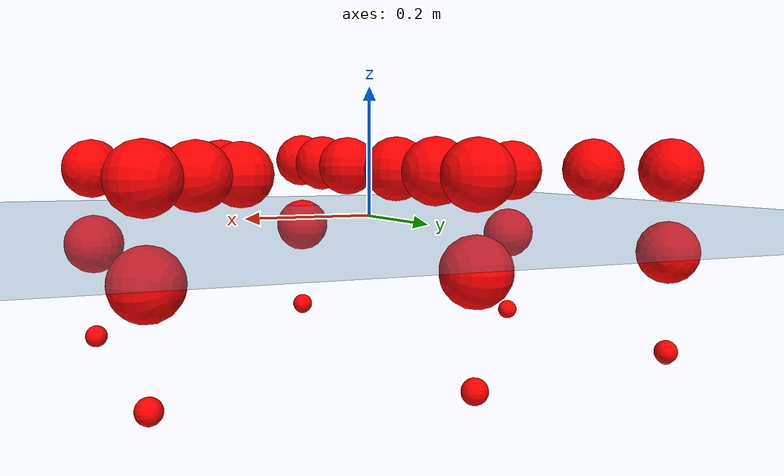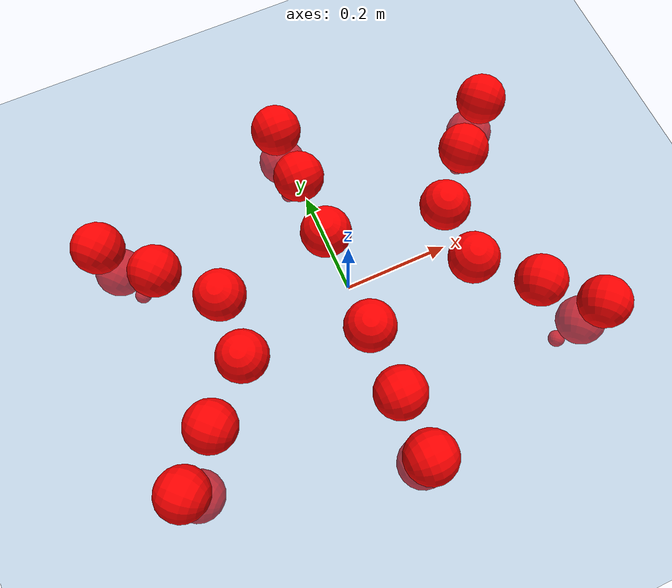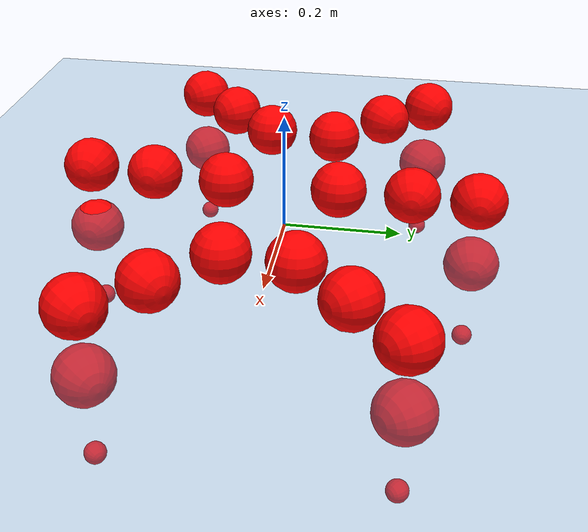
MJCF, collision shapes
<mujoco model="Golem">
  <compiler angle="radian" assetdir="assets" balanceinertia="true" inertiafromgeom="false"/>

  <option timestep="0.005" density="1.2" viscosity="2e-05"/>

  <size nkey="1"/>

  <visual>
    <quality shadowsize="8192"/>
    <map shadowclip="0.5"/>
  </visual>

  <default>
    <default class="/">
      <joint armature="0.01" damping="0.01" frictionloss="0.01"/>
      <geom contype="0" conaffinity="0" group="1" solref="-1000 -80"/>
      <site size="0.01 0.005 0.005" group="5"/>
      <general forcelimited="true" biastype="affine" gainprm="25" biasprm="0 -25 -0.5"/>
      <default class="visual">
        <geom type="mesh" group="2"/>
      </default>
      <default class="collision">
        <geom group="3"/>
      </default>
      <default class="foot">
        <geom size="0.01 0 0" condim="6" group="4" priority="1" solimp="0.015 1 0.01"/>
      </default>
      <default class="reward_collision_sphere">
        <geom group="5" rgba="1 0 0 1"/>
      </default>
    </default>
  </default>

  <asset>
    <texture type="skybox" colorspace="auto" name="//unnamed_texture_0" builtin="gradient" rgb1="0.95 0.95 0.95" rgb2="0.95 0.95 0.95" width="100" height="600"/>
    <texture type="2d" colorspace="auto" name="texplane" builtin="checker" rgb1="0.345 0.575 0.748" rgb2="0.345 0.575 0.748" markrgb="1 1 1" width="512" height="512"/>
    <material name="MatPlane" class="/" texture="texplane" texuniform="true" texrepeat="2 2" specular="0.9"/>
    <mesh name="body" class="/" file="body.stl" scale="0.001 0.001 0.001"/>
    <mesh name="coxa" class="/" file="coxa.stl" scale="0.001 0.001 0.001"/>
    <mesh name="femur" class="/" file="femur.stl" scale="0.001 0.001 0.001"/>
    <mesh name="tibia" class="/" file="tibia.stl" scale="0.001 0.001 0.001"/>
    <mesh name="tarsus" class="/" file="tarsus.stl" scale="0.001 0.001 0.001"/>
  </asset>

  <worldbody>
    <geom name="floor" class="/" size="100 100 0.125" type="plane" group="0" material="MatPlane"/>
    <light name="toplight_shadow" class="/" pos="0 0 5" dir="0.0990148 0.0990148 -0.990148" type="directional" ambient="0.04 0.04 0.04" diffuse="0.55 0.55 0.55" specular="0.12 0.12 0.12"/>
    <light name="toplight_fill" class="/" pos="0 0 5" dir="0.0990148 0.0990148 -0.990148" type="directional" castshadow="false" ambient="0.04 0.04 0.04" diffuse="0.3 0.3 0.3" specular="0.08 0.08 0.08"/>
    <body name="trunk" pos="-0.0016909 -0.00208828 0.00176725" quat="0.999999 -0.000651049 0.000262726 -0.00111931">
      <inertial pos="0.00201428 0.000992339 0.00151971" quat="0.99995 0.00328002 0.00448639 -0.00827138" mass="6.30627" diaginertia="0.057907 0.0140528 0.015393"/>
      <joint name="//unnamed_joint_0" type="free"/>
      <geom name="//unnamed_geom_1" class="/" pos="0 0 0.0691556" quat="1 0 0 0" type="mesh" rgba="0.9 0.9 0.9 1" mesh="body"/>
      <site name="imu" class="/" pos="0.184703 0.00852817 0.112102" size="0.011844"/>
      <camera name="track" class="/" pos="0 -2.11805 0" quat="0.707107 0.707107 0 0" mode="trackcom"/>
      <camera name="ego_camera" class="/" pos="0.183769 0 0.108056" quat="-0.5 -0.5 0.5 0.5"/>
      <body name="coxa_RR" pos="-0.253438 -0.0879953 0.0713457" quat="0.382509 0.00114095 0.000312758 -0.923951">
        <inertial pos="4.1579e-05 0.00123347 0.00268936" quat="0.999992 0.000338652 0.00345837 -0.00194878" mass="0.341538" diaginertia="0.0567782 0.0136999 0.0157081"/>
        <joint name="coxa_joint_RR" class="/" pos="0 0 0" axis="-0.00714695 -0.000847457 -0.999974" range="-3.13273 3.08599" armature="0.0109883" damping="0.00792265" frictionloss="0.0117129"/>
        <geom name="//unnamed_geom_2" class="/" type="mesh" rgba="0.2 0.2 0.2 1" mesh="coxa"/>
        <geom name="//unnamed_geom_3" class="reward_collision_sphere" size="0.0473759" pos="-0.0424083 0 0"/>
        <body name="femur_RR" pos="0.0843171 -0.00246419 -0.00443237" quat="0.500401 -0.499568 0.500349 0.499681">
          <inertial pos="0.00186866 0.000333024 0.0029147" quat="0.999938 0.00794949 -0.00745655 0.00230194" mass="0.330907" diaginertia="0.0567616 0.013347 0.0145407"/>
          <joint name="femur_joint_RR" class="/" pos="0 0 0" axis="0.0105682 -0.00623427 -0.999925" range="-3.18907 3.13981" armature="0.0119837" damping="0.0230383" frictionloss="0.0120809"/>
          <geom name="//unnamed_geom_4" class="/" type="mesh" rgba="0.9 0.9 0.9 1" mesh="femur"/>
          <geom name="//unnamed_geom_5" class="reward_collision_sphere" size="0.0473759"/>
          <body name="tibia_RR" pos="0.00109683 -0.114149 0.00221406" quat="-3.187e-05 1 -5.3665e-05 -0.000143102">
            <inertial pos="-0.000960274 0.000568986 0.00018334" quat="0.999944 -0.00571337 -0.00808589 0.00379161" mass="0.32878" diaginertia="0.0527873 0.0129305 0.0140632"/>
            <joint name="tibia_joint_RR" class="/" pos="0 0 0" axis="0.00250735 -0.00119552 0.999996" range="-3.18033 3.13496" armature="0.0103317" damping="0" frictionloss="0.0113909"/>
            <geom name="//unnamed_geom_6" class="/" type="mesh" rgba="0.2 0.2 0.2 1" mesh="tibia"/>
            <geom name="//unnamed_geom_7" class="reward_collision_sphere" size="0.0473759"/>
            <body name="tarsus_RR" pos="0.126191 0.00221641 -0.00165055" quat="1 -0.000163742 -0.000280628 -0.000237363">
              <inertial pos="0.0833136 0.000353756 -0.00119999" quat="0.499461 0.49222 0.507889 0.500306" mass="0.312126" diaginertia="0.0570243 0.0128989 0.0143364"/>
              <joint name="tarsus_joint_RR" class="/" pos="0 0 0" axis="0.00990408 0.00800963 0.999919" stiffness="0.00640417" range="-3.13513 3.10357" armature="0.0102172" damping="0.0387763" frictionloss="0.0133107"/>
              <geom name="//unnamed_geom_8" class="/" type="mesh" rgba="0.9 0.9 0.9 1" mesh="tarsus"/>
              <geom name="foot_1" class="foot" size="0.0112932" pos="0.158324 0 0" quat="0 -0.707107 0 0.707107"/>
              <geom name="//unnamed_geom_10" class="reward_collision_sphere" size="0.0473759"/>
              <geom name="//unnamed_geom_11" class="reward_collision_sphere" size="0.017766" pos="0.151963 0 0"/>
              <site name="foot_1" class="foot" pos="0.158324 0 0" quat="0 -0.707107 0 0.707107" size="0.011844"/>
            </body>
          </body>
        </body>
      </body>
      <body name="coxa_RM" pos="-0.00185795 -0.141521 0.0743634" quat="0.706475 0.000687829 -0.000225679 -0.707738">
        <inertial pos="-0.000333407 -0.000876863 0.00100135" quat="0.999988 -0.00124953 0.00459459 -0.00117976" mass="0.331304" diaginertia="0.0565998 0.0133398 0.0140154"/>
        <joint name="coxa_joint_RM" class="/" pos="0 0 0" axis="-0.00519195 -0.00466132 -0.999976" stiffness="0.00407159" range="-3.1768 3.12409" armature="0.0125295" damping="0.0126837" frictionloss="0.0102798"/>
        <geom name="//unnamed_geom_12" class="/" type="mesh" rgba="0.2 0.2 0.2 1" mesh="coxa"/>
        <geom name="//unnamed_geom_13" class="reward_collision_sphere" size="0.0473759" pos="-0.0424083 0 0"/>
        <body name="femur_RM" pos="0.0838653 -0.00191347 0.00352483" quat="0.500492 -0.500075 0.499546 0.499886">
          <inertial pos="-0.00126116 -0.000450511 -3.45076e-05" quat="0.999957 -0.0032381 0.0036113 -0.00794624" mass="0.323844" diaginertia="0.0582619 0.0132798 0.0145008"/>
          <joint name="femur_joint_RM" class="/" pos="0 0 0" axis="0.000528643 0.00138374 -0.999999" range="-3.15744 3.1462" armature="0.0133472" damping="0.0286762" frictionloss="0.0115526"/>
          <geom name="//unnamed_geom_14" class="/" type="mesh" rgba="0.9 0.9 0.9 1" mesh="femur"/>
          <geom name="//unnamed_geom_15" class="reward_collision_sphere" size="0.0473759"/>
          <body name="tibia_RM" pos="-0.00363336 -0.11422 -0.000183607" quat="0.000146281 1 -0.000142939 -1.61891e-05">
            <inertial pos="0.00200717 0.00281061 -0.00202049" quat="0.999975 0.00215564 -0.00650484 -0.00184489" mass="0.351153" diaginertia="0.0585215 0.0135006 0.015484"/>
            <joint name="tibia_joint_RM" class="/" pos="0 0 0" axis="-0.00730125 0.00156647 0.999972" range="-3.15297 3.08504" armature="0.0116842" damping="0.0136171" frictionloss="0.0102492"/>
            <geom name="//unnamed_geom_16" class="/" type="mesh" rgba="0.2 0.2 0.2 1" mesh="tibia"/>
            <geom name="//unnamed_geom_17" class="reward_collision_sphere" size="0.0473759"/>
            <body name="tarsus_RM" pos="0.12272 0.00248144 0.00197976" quat="1 -9.7154e-05 -0.000128595 6.99998e-05">
              <inertial pos="0.0834879 -0.00219258 7.68297e-05" quat="0.506065 0.495645 0.503743 0.494447" mass="0.344404" diaginertia="0.0586044 0.0138714 0.0153976"/>
              <joint name="tarsus_joint_RM" class="/" pos="0 0 0" axis="-0.00417042 0.00120042 0.999991" stiffness="0.00651129" range="-3.14126 3.14231" armature="0.0120066" damping="0.0119394" frictionloss="0.0118144"/>
              <geom name="//unnamed_geom_18" class="/" type="mesh" rgba="0.9 0.9 0.9 1" mesh="tarsus"/>
              <geom name="foot_2" class="foot" size="0.0122689" pos="0.158324 0 0" quat="0 -0.707107 0 0.707107"/>
              <geom name="//unnamed_geom_20" class="reward_collision_sphere" size="0.0473759"/>
              <geom name="//unnamed_geom_21" class="reward_collision_sphere" size="0.017766" pos="0.151963 0 0"/>
              <site name="foot_2" class="foot" pos="0.158324 0 0" quat="0 -0.707107 0 0.707107" size="0.011844"/>
            </body>
          </body>
        </body>
      </body>
      <body name="coxa_RF" pos="0.252156 -0.0884757 0.0689204" quat="0.923904 -0.00016688 -5.0979e-05 -0.382624">
        <inertial pos="0.00259674 0.00198082 -0.00010808" quat="1 0.000267704 -0.000154015 -0.000170306" mass="0.328629" diaginertia="0.0598157 0.0139698 0.0152019"/>
        <joint name="coxa_joint_RF" class="/" pos="0 0 0" axis="0.000108687 0.00136066 -0.999999" range="-3.19224 3.13827" armature="0.0123652" damping="0.0106303" frictionloss="0.0102762"/>
        <geom name="//unnamed_geom_22" class="/" type="mesh" rgba="0.2 0.2 0.2 1" mesh="coxa"/>
        <geom name="//unnamed_geom_23" class="reward_collision_sphere" size="0.0473759" pos="-0.0424083 0 0"/>
        <body name="femur_RF" pos="0.0826619 0.00195316 -0.000864651" quat="0.499093 -0.499867 0.500142 0.500897">
          <inertial pos="0.00218544 -0.00185132 0.00235191" quat="1 -0.00038106 -0.000194692 0.000536182" mass="0.325815" diaginertia="0.0577043 0.0132931 0.0145989"/>
          <joint name="femur_joint_RF" class="/" pos="0 0 0" axis="0.00949537 -0.00277729 -0.999951" stiffness="0.0109445" range="-3.10794 3.10602" armature="0.0116656" damping="0.0178153" frictionloss="0.0104545"/>
          <geom name="//unnamed_geom_24" class="/" type="mesh" rgba="0.9 0.9 0.9 1" mesh="femur"/>
          <geom name="//unnamed_geom_25" class="reward_collision_sphere" size="0.0473759"/>
          <body name="tibia_RF" pos="-0.0028687 -0.11444 0.000122417" quat="6.09408e-05 1 -2.93682e-05 1.86233e-05">
            <inertial pos="0.00118536 -0.000762648 -0.000565384" quat="0.99994 0.00506286 0.00908031 0.00346052" mass="0.336438" diaginertia="0.0567758 0.0132924 0.0145273"/>
            <joint name="tibia_joint_RF" class="/" pos="0 0 0" axis="0.00934181 -0.00518141 0.999943" stiffness="0.00579946" range="-3.14706 3.11458" armature="0.0113769" damping="0.0338288" frictionloss="0.0116159"/>
            <geom name="//unnamed_geom_26" class="/" type="mesh" rgba="0.2 0.2 0.2 1" mesh="tibia"/>
            <geom name="//unnamed_geom_27" class="reward_collision_sphere" size="0.0473759"/>
            <body name="tarsus_RF" pos="0.122781 -0.000811038 0.000509785" quat="1 0.000625269 -0.000342562 -0.000419131">
              <inertial pos="0.0837819 -9.26069e-05 0.00085888" quat="0.504042 0.491944 0.49861 0.505293" mass="0.343153" diaginertia="0.0582533 0.0129307 0.0146488"/>
              <joint name="tarsus_joint_RF" class="/" pos="0 0 0" axis="0.00638265 0.00361135 0.999973" range="-3.18859 3.14041" armature="0.0121904" damping="0.0012601" frictionloss="0.0102604"/>
              <geom name="//unnamed_geom_28" class="/" type="mesh" rgba="0.9 0.9 0.9 1" mesh="tarsus"/>
              <geom name="foot_3" class="foot" size="0.0112983" pos="0.158324 0 0" quat="0 -0.707107 0 0.707107"/>
              <geom name="//unnamed_geom_30" class="reward_collision_sphere" size="0.0473759"/>
              <geom name="//unnamed_geom_31" class="reward_collision_sphere" size="0.017766" pos="0.151963 0 0"/>
              <site name="foot_3" class="foot" pos="0.158324 0 0" quat="0 -0.707107 0 0.707107" size="0.011844"/>
            </body>
          </body>
        </body>
      </body>
      <body name="coxa_LR" pos="-0.250013 0.0916682 0.068337" quat="0.383037 -4.65329e-05 -6.45034e-05 0.923733">
        <inertial pos="-0.00106747 0.00208582 0.00231048" quat="0.999993 -0.00123158 -0.00320386 -0.00152738" mass="0.345366" diaginertia="0.0590225 0.0138355 0.0157281"/>
        <joint name="coxa_joint_LR" class="/" pos="0 0 0" axis="-0.0037144 0.00142798 -0.999992" stiffness="0.00272635" range="-3.18965 3.09173" armature="0.0123399" damping="0.0104248" frictionloss="0.0132148"/>
        <geom name="//unnamed_geom_32" class="/" type="mesh" rgba="0.2 0.2 0.2 1" mesh="coxa"/>
        <geom name="//unnamed_geom_33" class="reward_collision_sphere" size="0.0473759" pos="-0.0424083 0 0"/>
        <body name="femur_LR" pos="0.0841845 0.00153743 0.00257684" quat="0.499873 -0.49992 0.500185 0.500022">
          <inertial pos="0.000874033 -0.000387895 -0.000334592" quat="0.99994 -0.00109471 -0.00390919 0.0102008" mass="0.322089" diaginertia="0.0530153 0.0125038 0.0143462"/>
          <joint name="femur_joint_LR" class="/" pos="0 0 0" axis="-0.00868699 0.00725203 0.999936" range="-3.14732 3.12336" armature="0.0126911" damping="0.00652045" frictionloss="0.0103316"/>
          <geom name="//unnamed_geom_34" class="/" type="mesh" rgba="0.9 0.9 0.9 1" mesh="femur"/>
          <geom name="//unnamed_geom_35" class="reward_collision_sphere" size="0.0473759"/>
          <body name="tibia_LR" pos="0.000333866 -0.114679 -0.00266262" quat="0.000182916 1 0.000225968 -0.000267534">
            <inertial pos="0.00182624 -0.00150702 -0.000360129" quat="0.999996 0.00170069 -0.000281035 0.00203693" mass="0.32763" diaginertia="0.054676 0.0133862 0.0151897"/>
            <joint name="tibia_joint_LR" class="/" pos="0 0 0" axis="0.000212114 -0.00761492 -0.999971" stiffness="0.00105229" range="-3.12551 3.14205" armature="0.0134957" damping="0.0049186" frictionloss="0.0131613"/>
            <geom name="//unnamed_geom_36" class="/" type="mesh" rgba="0.2 0.2 0.2 1" mesh="tibia"/>
            <geom name="//unnamed_geom_37" class="reward_collision_sphere" size="0.0473759"/>
            <body name="tarsus_LR" pos="0.124163 -0.00130113 -0.0021456" quat="0.999999 -0.000573466 0.00016832 0.00115524">
              <inertial pos="0.0824413 -0.00170894 -0.00270895" quat="0.499916 0.509724 0.491686 0.498508" mass="0.342799" diaginertia="0.0577494 0.0137304 0.0153691"/>
              <joint name="tarsus_joint_LR" class="/" pos="0 0 0" axis="3.16649e-05 -0.00064414 -1" stiffness="0.000271759" range="-3.17206 3.10168" armature="0.0132909" damping="0.0276172" frictionloss="0.0102594"/>
              <geom name="//unnamed_geom_38" class="/" type="mesh" rgba="0.9 0.9 0.9 1" mesh="tarsus"/>
              <geom name="foot_4" class="foot" size="0.0129306" pos="0.158324 0 0" quat="0.707107 0 -0.707107 0"/>
              <geom name="//unnamed_geom_40" class="reward_collision_sphere" size="0.0473759"/>
              <geom name="//unnamed_geom_41" class="reward_collision_sphere" size="0.017766" pos="0.151963 0 0"/>
              <site name="foot_4" class="foot" pos="0.158324 0 0" quat="0.707107 0 -0.707107 0" size="0.011844"/>
            </body>
          </body>
        </body>
      </body>
      <body name="coxa_LM" pos="-0.00157328 0.136622 0.0728624" quat="0.707091 -0.00142393 -0.000789525 0.70712">
        <inertial pos="0.000144313 0.000713146 -0.00189205" quat="0.999999 7.25024e-05 -0.000972362 -0.000301798" mass="0.330659" diaginertia="0.0577787 0.013928 0.0153414"/>
        <joint name="coxa_joint_LM" class="/" pos="0 0 0" axis="-0.0021901 0.00232339 -0.999995" range="-3.12026 3.12592" armature="0.0102421" damping="0" frictionloss="0.0133984"/>
        <geom name="//unnamed_geom_42" class="/" type="mesh" rgba="0.2 0.2 0.2 1" mesh="coxa"/>
        <geom name="//unnamed_geom_43" class="reward_collision_sphere" size="0.0473759" pos="-0.0424083 0 0"/>
        <body name="femur_LM" pos="0.0809861 0.00199914 -0.000991331" quat="0.499811 -0.499661 0.500366 0.500163">
          <inertial pos="-0.000303333 -0.000103423 0.000811218" quat="0.999945 0.00217818 -0.0102605 -0.000643351" mass="0.335447" diaginertia="0.0559171 0.0136831 0.0150132"/>
          <joint name="femur_joint_LM" class="/" pos="0 0 0" axis="-2.66924e-05 1.85808e-05 1" range="-3.10272 3.18845" armature="0.0129478" damping="0" frictionloss="0.0119179"/>
          <geom name="//unnamed_geom_44" class="/" type="mesh" rgba="0.9 0.9 0.9 1" mesh="femur"/>
          <geom name="//unnamed_geom_45" class="reward_collision_sphere" size="0.0473759"/>
          <body name="tibia_LM" pos="0.00189871 -0.109713 0.00168365" quat="-0.000692771 1 -0.000570588 -0.000434816">
            <inertial pos="-0.00189808 -0.00253989 -0.00292055" quat="0.999993 0.00265182 0.00058641 0.00275429" mass="0.331959" diaginertia="0.0548799 0.013482 0.0150067"/>
            <joint name="tibia_joint_LM" class="/" pos="0 0 0" axis="0.00895957 -0.00567653 -0.999944" range="-3.08874 3.12539" armature="0.0128071" damping="0.0117197" frictionloss="0.0113528"/>
            <geom name="//unnamed_geom_46" class="/" type="mesh" rgba="0.2 0.2 0.2 1" mesh="tibia"/>
            <geom name="//unnamed_geom_47" class="reward_collision_sphere" size="0.0473759"/>
            <body name="tarsus_LM" pos="0.121724 -0.000157065 0.000397782" quat="1 -0.000379732 0.0002476 -0.000806064">
              <inertial pos="0.0876177 0.00240599 0.0019524" quat="0.49984 0.498726 0.498905 0.50252" mass="0.322758" diaginertia="0.0559008 0.0124215 0.0138688"/>
              <joint name="tarsus_joint_LM" class="/" pos="0 0 0" axis="-0.00125858 -0.000314858 -0.999999" range="-3.0687 3.15869" armature="0.0116133" damping="0.0129255" frictionloss="0.0119263"/>
              <geom name="//unnamed_geom_48" class="/" type="mesh" rgba="0.9 0.9 0.9 1" mesh="tarsus"/>
              <geom name="foot_5" class="foot" size="0.011666" pos="0.158324 0 0" quat="0.707107 0 -0.707107 0"/>
              <geom name="//unnamed_geom_50" class="reward_collision_sphere" size="0.0473759"/>
              <geom name="//unnamed_geom_51" class="reward_collision_sphere" size="0.017766" pos="0.151963 0 0"/>
              <site name="foot_5" class="foot" pos="0.158324 0 0" quat="0.707107 0 -0.707107 0" size="0.011844"/>
            </body>
          </body>
        </body>
      </body>
      <body name="coxa_LF" pos="0.252084 0.0862684 0.0656711" quat="0.923855 0.000220175 0.000388732 0.382743">
        <inertial pos="-0.000215173 -0.00220455 0.00107547" quat="0.999997 0.000210307 -0.00170409 -0.00175196" mass="0.320383" diaginertia="0.0534398 0.0130471 0.0141342"/>
        <joint name="coxa_joint_LF" class="/" pos="0 0 0" axis="0.0107339 0.00195529 -0.99994" range="-3.1407 3.14299" armature="0.00995374" damping="0.0274905" frictionloss="0.0133463"/>
        <geom name="//unnamed_geom_52" class="/" type="mesh" rgba="0.2 0.2 0.2 1" mesh="coxa"/>
        <geom name="//unnamed_geom_53" class="reward_collision_sphere" size="0.0473759" pos="-0.0424083 0 0"/>
        <body name="femur_LF" pos="0.0816041 0.00400471 0.0013537" quat="0.499867 -0.499953 0.500159 0.50002">
          <inertial pos="0.00153523 -0.00229733 -0.00283214" quat="0.999998 -0.00178955 -0.00070937 -0.00081345" mass="0.334358" diaginertia="0.0550548 0.0127889 0.0146731"/>
          <joint name="femur_joint_LF" class="/" pos="0 0 0" axis="-0.0010922 -0.00199758 0.999997" stiffness="0.00782819" range="-3.12204 3.17607" armature="0.0121454" damping="0" frictionloss="0.0131923"/>
          <geom name="//unnamed_geom_54" class="/" type="mesh" rgba="0.9 0.9 0.9 1" mesh="femur"/>
          <geom name="//unnamed_geom_55" class="reward_collision_sphere" size="0.0473759"/>
          <body name="tibia_LF" pos="4.17447e-06 -0.11646 0.00201815" quat="0.000262473 1 -3.27919e-05 0.000133316">
            <inertial pos="0.00229402 0.001475 -0.000370802" quat="0.999975 -0.00482659 -0.00515364 -6.07637e-05" mass="0.336771" diaginertia="0.0550488 0.0133395 0.0142937"/>
            <joint name="tibia_joint_LF" class="/" pos="0 0 0" axis="0.000173626 0.00116062 -0.999999" stiffness="0.000231431" range="-3.1403 3.13842" armature="0.0128347" damping="0.00204247" frictionloss="0.0112429"/>
            <geom name="//unnamed_geom_56" class="/" type="mesh" rgba="0.2 0.2 0.2 1" mesh="tibia"/>
            <geom name="//unnamed_geom_57" class="reward_collision_sphere" size="0.0473759"/>
            <body name="tarsus_LF" pos="0.125187 0.0014105 -0.00318961" quat="0.999999 -0.001216 0.000310461 0.000955338">
              <inertial pos="0.0836648 -0.00035453 0.000458079" quat="0.498624 0.500204 0.500212 0.500957" mass="0.329104" diaginertia="0.0588259 0.0138164 0.014983"/>
              <joint name="tarsus_joint_LF" class="/" pos="0 0 0" axis="0.00921822 -0.0100647 -0.999907" stiffness="0.0258698" range="-3.08669 3.13686" armature="0.0134443" damping="0.0302173" frictionloss="0.0132853"/>
              <geom name="//unnamed_geom_58" class="/" type="mesh" rgba="0.9 0.9 0.9 1" mesh="tarsus"/>
              <geom name="foot_6" class="foot" size="0.0118098" pos="0.158324 0 0" quat="0.707107 0 -0.707107 0"/>
              <geom name="//unnamed_geom_60" class="reward_collision_sphere" size="0.0473759"/>
              <geom name="//unnamed_geom_61" class="reward_collision_sphere" size="0.017766" pos="0.151963 0 0"/>
              <site name="foot_6" class="foot" pos="0.158324 0 0" quat="0.707107 0 -0.707107 0" size="0.011844"/>
            </body>
          </body>
        </body>
      </body>
    </body>
  </worldbody>

  <contact>
    <pair class="/" geom1="floor" geom2="foot_1" name="//unnamed_contact_0"/>
    <pair class="/" geom1="floor" geom2="foot_2" name="//unnamed_contact_1"/>
    <pair class="/" geom1="floor" geom2="foot_3" name="//unnamed_contact_2"/>
    <pair class="/" geom1="floor" geom2="foot_4" name="//unnamed_contact_3"/>
    <pair class="/" geom1="floor" geom2="foot_5" name="//unnamed_contact_4"/>
    <pair class="/" geom1="floor" geom2="foot_6" name="//unnamed_contact_5"/>
  </contact>

  <actuator>
    <general name="coxa_joint_RR" class="/" joint="coxa_joint_RR" forcerange="-9.16778 9.16778" gainprm="28.883" biasprm="0 -28.883 -0.570131"/>
    <general name="femur_joint_RR" class="/" joint="femur_joint_RR" forcerange="-9.47494 9.47494" gainprm="28.883" biasprm="0 -28.883 -0.570131"/>
    <general name="tibia_joint_RR" class="/" joint="tibia_joint_RR" forcerange="-9.4719 9.4719" gainprm="28.883" biasprm="0 -28.883 -0.570131"/>
    <general name="tarsus_joint_RR" class="/" joint="tarsus_joint_RR" forcerange="-9.38541 9.38541" gainprm="28.883" biasprm="0 -28.883 -0.570131"/>
    <general name="coxa_joint_RM" class="/" joint="coxa_joint_RM" forcerange="-8.57646 8.57646" gainprm="28.883" biasprm="0 -28.883 -0.570131"/>
    <general name="femur_joint_RM" class="/" joint="femur_joint_RM" forcerange="-8.69611 8.69611" gainprm="28.883" biasprm="0 -28.883 -0.570131"/>
    <general name="tibia_joint_RM" class="/" joint="tibia_joint_RM" forcerange="-8.89278 8.89278" gainprm="28.883" biasprm="0 -28.883 -0.570131"/>
    <general name="tarsus_joint_RM" class="/" joint="tarsus_joint_RM" forcerange="-7.93332 7.93332" gainprm="28.883" biasprm="0 -28.883 -0.570131"/>
    <general name="coxa_joint_RF" class="/" joint="coxa_joint_RF" forcerange="-9.31459 9.31459" gainprm="28.883" biasprm="0 -28.883 -0.570131"/>
    <general name="femur_joint_RF" class="/" joint="femur_joint_RF" forcerange="-8.89179 8.89179" gainprm="28.883" biasprm="0 -28.883 -0.570131"/>
    <general name="tibia_joint_RF" class="/" joint="tibia_joint_RF" forcerange="-8.20873 8.20873" gainprm="28.883" biasprm="0 -28.883 -0.570131"/>
    <general name="tarsus_joint_RF" class="/" joint="tarsus_joint_RF" forcerange="-9.48758 9.48758" gainprm="28.883" biasprm="0 -28.883 -0.570131"/>
    <general name="coxa_joint_LR" class="/" joint="coxa_joint_LR" forcerange="-8.75883 8.75883" gainprm="28.883" biasprm="0 -28.883 -0.570131"/>
    <general name="femur_joint_LR" class="/" joint="femur_joint_LR" forcerange="-8.56304 8.56304" gainprm="28.883" biasprm="0 -28.883 -0.570131"/>
    <general name="tibia_joint_LR" class="/" joint="tibia_joint_LR" forcerange="-7.79669 7.79669" gainprm="28.883" biasprm="0 -28.883 -0.570131"/>
    <general name="tarsus_joint_LR" class="/" joint="tarsus_joint_LR" forcerange="-8.1343 8.1343" gainprm="28.883" biasprm="0 -28.883 -0.570131"/>
    <general name="coxa_joint_LM" class="/" joint="coxa_joint_LM" forcerange="-7.79728 7.79728" gainprm="28.883" biasprm="0 -28.883 -0.570131"/>
    <general name="femur_joint_LM" class="/" joint="femur_joint_LM" forcerange="-7.84065 7.84065" gainprm="28.883" biasprm="0 -28.883 -0.570131"/>
    <general name="tibia_joint_LM" class="/" joint="tibia_joint_LM" forcerange="-8.2916 8.2916" gainprm="28.883" biasprm="0 -28.883 -0.570131"/>
    <general name="tarsus_joint_LM" class="/" joint="tarsus_joint_LM" forcerange="-7.99714 7.99714" gainprm="28.883" biasprm="0 -28.883 -0.570131"/>
    <general name="coxa_joint_LF" class="/" joint="coxa_joint_LF" forcerange="-7.77317 7.77317" gainprm="28.883" biasprm="0 -28.883 -0.570131"/>
    <general name="femur_joint_LF" class="/" joint="femur_joint_LF" forcerange="-9.40902 9.40902" gainprm="28.883" biasprm="0 -28.883 -0.570131"/>
    <general name="tibia_joint_LF" class="/" joint="tibia_joint_LF" forcerange="-9.13295 9.13295" gainprm="28.883" biasprm="0 -28.883 -0.570131"/>
    <general name="tarsus_joint_LF" class="/" joint="tarsus_joint_LF" forcerange="-7.78604 7.78604" gainprm="28.883" biasprm="0 -28.883 -0.570131"/>
  </actuator>

  <sensor>
    <gyro site="imu" name="imu_angular_velocity"/>
    <velocimeter site="imu" name="imu_linear_velocity"/>
    <framelinvel objtype="site" objname="foot_1" name="foot_1_global_linear_velocity"/>
    <framelinvel objtype="site" objname="foot_2" name="foot_2_global_linear_velocity"/>
    <framelinvel objtype="site" objname="foot_3" name="foot_3_global_linear_velocity"/>
    <framelinvel objtype="site" objname="foot_4" name="foot_4_global_linear_velocity"/>
    <framelinvel objtype="site" objname="foot_5" name="foot_5_global_linear_velocity"/>
    <framelinvel objtype="site" objname="foot_6" name="foot_6_global_linear_velocity"/>
  </sensor>

  <keyframe>
    <key name="home" qpos="0 0 0.1457 1 0 0 0 0 0 0 0 0 0 0 0 0 0 0 0 0 0 0 0 0 0 0 0 0 0 0 0"/>
  </keyframe>
</mujoco>
